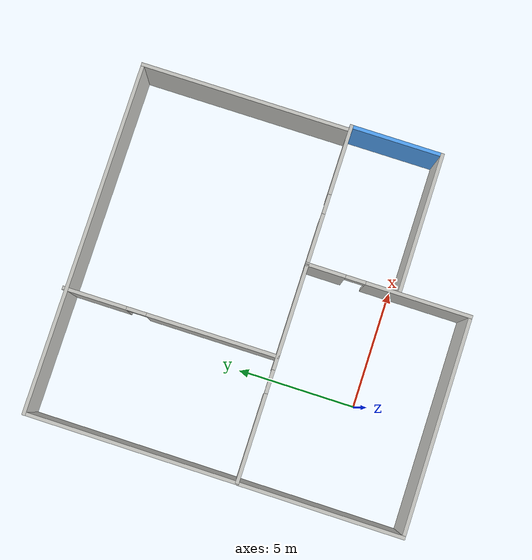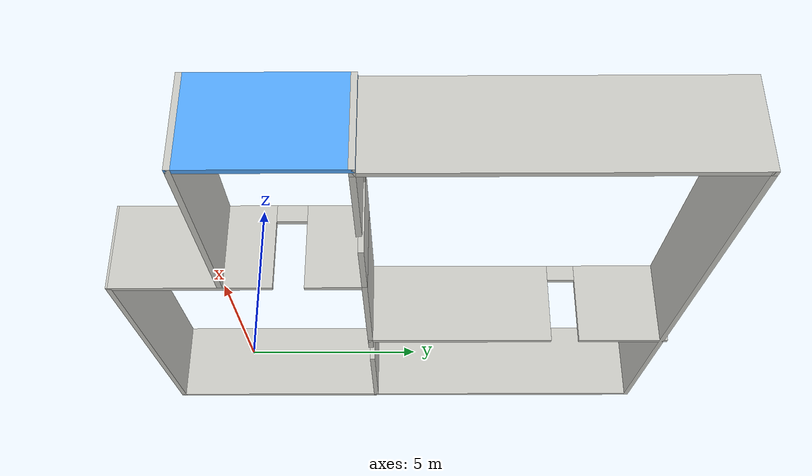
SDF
<?xml version='1.0'?>
<sdf version='1.6'>
  <model name='House_small'>
    <pose frame=''>3.20744 4.73997 0 0 -0 0</pose>
    <link name='Wall_10'>
      <collision name='Wall_10_Collision'>
        <geometry>
          <box>
            <size>6 0.15 2.5</size>
          </box>
        </geometry>
        <pose frame=''>0 0 1.25 0 -0 0</pose>
      </collision>
      <visual name='Wall_10_Visual'>
        <pose frame=''>0 0 1.25 0 -0 0</pose>
        <geometry>
          <box>
            <size>6 0.15 2.5</size>
          </box>
        </geometry>
        <material>
          <script>
            <uri>file://media/materials/scripts/gazebo.material</uri>
            <name>Gazebo/CeilingTiled</name>
          </script>
          <ambient>0.333333 0.666667 1 1</ambient>
        </material>
        <meta>
          <layer>0</layer>
        </meta>
      </visual>
      <pose frame=''>4.58308 -4.90555 0 0 -0 0</pose>
    </link>
    <link name='Wall_11'>
      <collision name='Wall_11_Collision'>
        <geometry>
          <box>
            <size>4 0.15 2.5</size>
          </box>
        </geometry>
        <pose frame=''>0 0 1.25 0 -0 0</pose>
      </collision>
      <visual name='Wall_11_Visual'>
        <pose frame=''>0 0 1.25 0 -0 0</pose>
        <geometry>
          <box>
            <size>4 0.15 2.5</size>
          </box>
        </geometry>
        <material>
          <script>
            <uri>file://media/materials/scripts/gazebo.material</uri>
            <name>Gazebo/Grey</name>
          </script>
          <ambient>0.333333 0.666667 1 1</ambient>
        </material>
        <meta>
          <layer>0</layer>
        </meta>
      </visual>
      <pose frame=''>7.50807 -2.98055 0 0 -0 1.5708</pose>
    </link>
    <link name='Wall_12'>
      <pose frame=''>4.58308 -1.05555 0 0 -0 3.14159</pose>
      <visual name='Wall_12_Visual_0'>
        <pose frame=''>-1.49616 0 1.25 0 -0 0</pose>
        <geometry>
          <box>
            <size>3.00768 0.15 2.5</size>
          </box>
        </geometry>
        <material>
          <script>
            <uri>file://media/materials/scripts/gazebo.material</uri>
            <name>Gazebo/CeilingTiled</name>
          </script>
          <ambient>0.333333 0.666667 1 1</ambient>
        </material>
        <meta>
          <layer>0</layer>
        </meta>
      </visual>
      <collision name='Wall_12_Collision_0'>
        <geometry>
          <box>
            <size>3.00768 0.15 2.5</size>
          </box>
        </geometry>
        <pose frame=''>-1.49616 0 1.25 0 -0 0</pose>
      </collision>
      <visual name='Wall_12_Visual_1'>
        <pose frame=''>1.92115 0 1.25 0 -0 0</pose>
        <geometry>
          <box>
            <size>2.1577 0.15 2.5</size>
          </box>
        </geometry>
        <material>
          <script>
            <uri>file://media/materials/scripts/gazebo.material</uri>
            <name>Gazebo/CeilingTiled</name>
          </script>
          <ambient>0.333333 0.666667 1 1</ambient>
        </material>
        <meta>
          <layer>0</layer>
        </meta>
      </visual>
      <collision name='Wall_12_Collision_1'>
        <geometry>
          <box>
            <size>2.1577 0.15 2.5</size>
          </box>
        </geometry>
        <pose frame=''>1.92115 0 1.25 0 -0 0</pose>
      </collision>
      <visual name='Wall_12_Visual_2'>
        <pose frame=''>0.424987 0 2.25 0 -0 0</pose>
        <geometry>
          <box>
            <size>0.83462 0.15 0.5</size>
          </box>
        </geometry>
        <material>
          <script>
            <uri>file://media/materials/scripts/gazebo.material</uri>
            <name>Gazebo/CeilingTiled</name>
          </script>
          <ambient>0.333333 0.666667 1 1</ambient>
        </material>
        <meta>
          <layer>0</layer>
        </meta>
      </visual>
      <collision name='Wall_12_Collision_2'>
        <geometry>
          <box>
            <size>0.83462 0.15 0.5</size>
          </box>
        </geometry>
        <pose frame=''>0.424987 0 2.25 0 -0 0</pose>
      </collision>
    </link>
    <link name='Wall_14'>
      <collision name='Wall_14_Collision'>
        <geometry>
          <box>
            <size>9 0.15 2.5</size>
          </box>
        </geometry>
        <pose frame=''>0 0 1.25 0 -0 0</pose>
      </collision>
      <visual name='Wall_14_Visual'>
        <pose frame=''>0 0 1.25 0 -0 0</pose>
        <geometry>
          <box>
            <size>9 0.15 2.5</size>
          </box>
        </geometry>
        <material>
          <script>
            <uri>file://media/materials/scripts/gazebo.material</uri>
            <name>Gazebo/CeilingTiled</name>
          </script>
          <ambient>0.333333 0.666667 1 1</ambient>
        </material>
        <meta>
          <layer>0</layer>
        </meta>
      </visual>
      <pose frame=''>-7.49803 3.36696 0 0 -0 1.5708</pose>
    </link>
    <link name='Wall_15'>
      <collision name='Wall_15_Collision'>
        <geometry>
          <box>
            <size>15 0.15 2.5</size>
          </box>
        </geometry>
        <pose frame=''>0 0 1.25 0 -0 0</pose>
      </collision>
      <visual name='Wall_15_Visual'>
        <pose frame=''>0 0 1.25 0 -0 0</pose>
        <geometry>
          <box>
            <size>15 0.15 2.5</size>
          </box>
        </geometry>
        <material>
          <script>
            <uri>file://media/materials/scripts/gazebo.material</uri>
            <name>Gazebo/CeilingTiled</name>
          </script>
          <ambient>0.333333 0.666667 1 1</ambient>
        </material>
        <meta>
          <layer>0</layer>
        </meta>
      </visual>
      <pose frame=''>-0.073034 7.79196 0 0 -0 0</pose>
    </link>
    <link name='Wall_16'>
      <collision name='Wall_16_Collision'>
        <geometry>
          <box>
            <size>9 0.15 2.5</size>
          </box>
        </geometry>
        <pose frame=''>0 0 1.25 0 -0 0</pose>
      </collision>
      <visual name='Wall_16_Visual'>
        <pose frame=''>0 0 1.25 0 -0 0</pose>
        <geometry>
          <box>
            <size>9 0.15 2.5</size>
          </box>
        </geometry>
        <material>
          <script>
            <uri>file://media/materials/scripts/gazebo.material</uri>
            <name>Gazebo/CeilingTiled</name>
          </script>
          <ambient>0.333333 0.666667 1 1</ambient>
        </material>
        <meta>
          <layer>0</layer>
        </meta>
      </visual>
      <pose frame=''>7.35197 3.36696 0 0 0 -1.5708</pose>
    </link>
    <link name='Wall_18'>
      <pose frame=''>-2.29424 3.42147 0 0 0 -1.56854</pose>
      <visual name='Wall_18_Visual_0'>
        <pose frame=''>-3.19538 0 1.25 0 -0 0</pose>
        <geometry>
          <box>
            <size>2.68975 0.15 2.5</size>
          </box>
        </geometry>
        <material>
          <script>
            <uri>file://media/materials/scripts/gazebo.material</uri>
            <name>Gazebo/CeilingTiled</name>
          </script>
          <ambient>0.333333 0.666667 1 1</ambient>
        </material>
        <meta>
          <layer>0</layer>
        </meta>
      </visual>
      <collision name='Wall_18_Collision_0'>
        <geometry>
          <box>
            <size>2.68975 0.15 2.5</size>
          </box>
        </geometry>
        <pose frame=''>-3.19538 0 1.25 0 -0 0</pose>
      </collision>
      <visual name='Wall_18_Visual_1'>
        <pose frame=''>1.76219 0 1.25 0 -0 0</pose>
        <geometry>
          <box>
            <size>5.55613 0.15 2.5</size>
          </box>
        </geometry>
        <material>
          <script>
            <uri>file://media/materials/scripts/gazebo.material</uri>
            <name>Gazebo/CeilingTiled</name>
          </script>
          <ambient>0.333333 0.666667 1 1</ambient>
        </material>
        <meta>
          <layer>0</layer>
        </meta>
      </visual>
      <collision name='Wall_18_Collision_1'>
        <geometry>
          <box>
            <size>5.55613 0.15 2.5</size>
          </box>
        </geometry>
        <pose frame=''>1.76219 0 1.25 0 -0 0</pose>
      </collision>
      <visual name='Wall_18_Visual_2'>
        <pose frame=''>-1.43319 0 2.25 0 -0 0</pose>
        <geometry>
          <box>
            <size>0.834635 0.15 0.5</size>
          </box>
        </geometry>
        <material>
          <script>
            <uri>file://media/materials/scripts/gazebo.material</uri>
            <name>Gazebo/CeilingTiled</name>
          </script>
          <ambient>0.333333 0.666667 1 1</ambient>
        </material>
        <meta>
          <layer>0</layer>
        </meta>
      </visual>
      <collision name='Wall_18_Collision_2'>
        <geometry>
          <box>
            <size>0.834635 0.15 0.5</size>
          </box>
        </geometry>
        <pose frame=''>-1.43319 0 2.25 0 -0 0</pose>
      </collision>
    </link>
    <link name='Wall_5'>
      <collision name='Wall_5_Collision'>
        <geometry>
          <box>
            <size>6.91789 0.15 2.5</size>
          </box>
        </geometry>
        <pose frame=''>0 0 1.25 0 -0 0</pose>
      </collision>
      <visual name='Wall_5_Visual'>
        <pose frame=''>0 0 1.25 0 -0 0</pose>
        <geometry>
          <box>
            <size>6.91789 0.15 2.5</size>
          </box>
        </geometry>
        <material>
          <script>
            <uri>file://media/materials/scripts/gazebo.material</uri>
            <name>Gazebo/CeilingTiled</name>
          </script>
          <ambient>0.333333 0.666667 1 1</ambient>
        </material>
        <meta>
          <layer>0</layer>
        </meta>
      </visual>
      <pose frame=''>-7.50807 -4.50282 0 0 0 -1.5708</pose>
    </link>
    <link name='Wall_6'>
      <collision name='Wall_6_Collision'>
        <geometry>
          <box>
            <size>9.25 0.15 2.5</size>
          </box>
        </geometry>
        <pose frame=''>0 0 1.25 0 -0 0</pose>
      </collision>
      <visual name='Wall_6_Visual'>
        <pose frame=''>0 0 1.25 0 -0 0</pose>
        <geometry>
          <box>
            <size>9.25 0.15 2.5</size>
          </box>
        </geometry>
        <material>
          <script>
            <uri>file://media/materials/scripts/gazebo.material</uri>
            <name>Gazebo/CeilingTiled</name>
          </script>
          <ambient>0.333333 0.666667 1 1</ambient>
        </material>
        <meta>
          <layer>0</layer>
        </meta>
      </visual>
      <pose frame=''>-2.95808 -7.88677 0 0 -0 0</pose>
    </link>
    <link name='Wall_7'>
      <pose frame=''>1.59695 -4.47241 0 0 -0 1.56933</pose>
      <visual name='Wall_7_Visual_0'>
        <pose frame=''>-1.26256 0 1.25 0 -0 0</pose>
        <geometry>
          <box>
            <size>4.45362 0.15 2.5</size>
          </box>
        </geometry>
        <material>
          <script>
            <uri>file://media/materials/scripts/gazebo.material</uri>
            <name>Gazebo/CeilingTiled</name>
          </script>
          <ambient>0.333333 0.666667 1 1</ambient>
        </material>
        <meta>
          <layer>0</layer>
        </meta>
      </visual>
      <collision name='Wall_7_Collision_0'>
        <geometry>
          <box>
            <size>4.45362 0.15 2.5</size>
          </box>
        </geometry>
        <pose frame=''>-1.26256 0 1.25 0 -0 0</pose>
      </collision>
      <visual name='Wall_7_Visual_1'>
        <pose frame=''>2.64887 0 1.25 0 -0 0</pose>
        <geometry>
          <box>
            <size>1.681 0.15 2.5</size>
          </box>
        </geometry>
        <material>
          <script>
            <uri>file://media/materials/scripts/gazebo.material</uri>
            <name>Gazebo/CeilingTiled</name>
          </script>
          <ambient>0.333333 0.666667 1 1</ambient>
        </material>
        <meta>
          <layer>0</layer>
        </meta>
      </visual>
      <collision name='Wall_7_Collision_1'>
        <geometry>
          <box>
            <size>1.681 0.15 2.5</size>
          </box>
        </geometry>
        <pose frame=''>2.64887 0 1.25 0 -0 0</pose>
      </collision>
      <visual name='Wall_7_Visual_2'>
        <pose frame=''>1.38631 0 2.25 0 -0 0</pose>
        <geometry>
          <box>
            <size>0.844115 0.15 0.5</size>
          </box>
        </geometry>
        <material>
          <script>
            <uri>file://media/materials/scripts/gazebo.material</uri>
            <name>Gazebo/CeilingTiled</name>
          </script>
          <ambient>0.333333 0.666667 1 1</ambient>
        </material>
        <meta>
          <layer>0</layer>
        </meta>
      </visual>
      <collision name='Wall_7_Collision_2'>
        <geometry>
          <box>
            <size>0.844115 0.15 0.5</size>
          </box>
        </geometry>
        <pose frame=''>1.38631 0 2.25 0 -0 0</pose>
      </collision>
    </link>
    <link name='Wall_8'>
      <pose frame=''>-2.94803 -1.05804 0 0 -0 3.14159</pose>
      <visual name='Wall_8_Visual_0'>
        <pose frame=''>-2.37042 0 1.25 0 -0 0</pose>
        <geometry>
          <box>
            <size>4.50916 0.15 2.5</size>
          </box>
        </geometry>
        <material>
          <script>
            <uri>file://media/materials/scripts/gazebo.material</uri>
            <name>Gazebo/CeilingTiled</name>
          </script>
          <ambient>0.333333 0.666667 1 1</ambient>
        </material>
        <meta>
          <layer>0</layer>
        </meta>
      </visual>
      <collision name='Wall_8_Collision_0'>
        <geometry>
          <box>
            <size>4.50916 0.15 2.5</size>
          </box>
        </geometry>
        <pose frame=''>-2.37042 0 1.25 0 -0 0</pose>
      </collision>
      <visual name='Wall_8_Visual_1'>
        <pose frame=''>2.74708 0 1.25 0 -0 0</pose>
        <geometry>
          <box>
            <size>3.75584 0.15 2.5</size>
          </box>
        </geometry>
        <material>
          <script>
            <uri>file://media/materials/scripts/gazebo.material</uri>
            <name>Gazebo/CeilingTiled</name>
          </script>
          <ambient>0.333333 0.666667 1 1</ambient>
        </material>
        <meta>
          <layer>0</layer>
        </meta>
      </visual>
      <collision name='Wall_8_Collision_1'>
        <geometry>
          <box>
            <size>3.75584 0.15 2.5</size>
          </box>
        </geometry>
        <pose frame=''>2.74708 0 1.25 0 -0 0</pose>
      </collision>
      <visual name='Wall_8_Visual_2'>
        <pose frame=''>0.376659 0 2.25 0 -0 0</pose>
        <geometry>
          <box>
            <size>0.984994 0.15 0.5</size>
          </box>
        </geometry>
        <material>
          <script>
            <uri>file://media/materials/scripts/gazebo.material</uri>
            <name>Gazebo/CeilingTiled</name>
          </script>
          <ambient>0.333333 0.666667 1 1</ambient>
        </material>
        <meta>
          <layer>0</layer>
        </meta>
      </visual>
      <collision name='Wall_8_Collision_2'>
        <geometry>
          <box>
            <size>0.984994 0.15 0.5</size>
          </box>
        </geometry>
        <pose frame=''>0.376659 0 2.25 0 -0 0</pose>
      </collision>
    </link>
    <static>1</static>
  </model>
</sdf>
